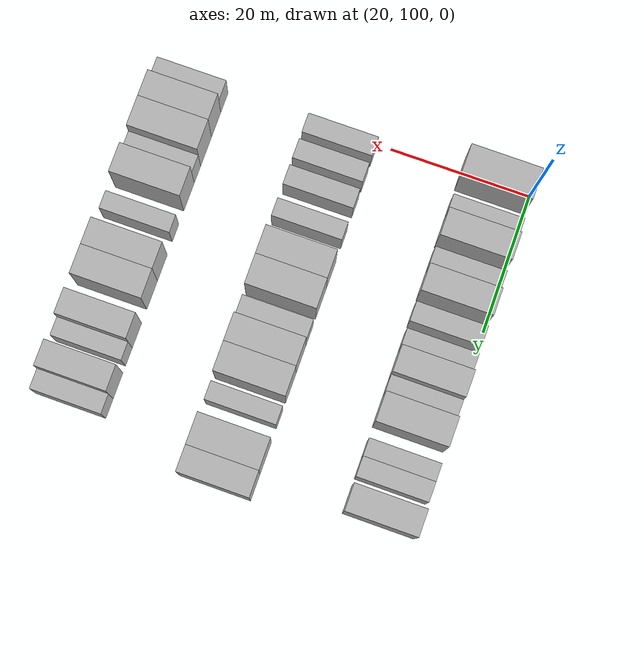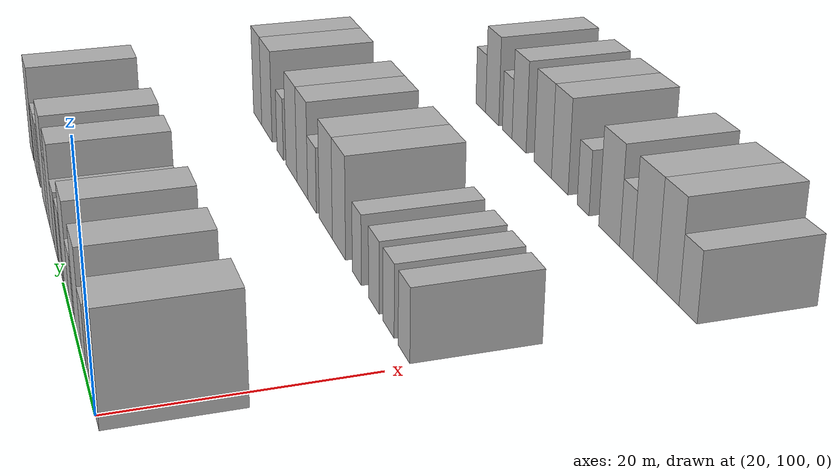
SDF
<sdf version="1.6">
 <world name="default">
  <model name="building_93">
   <static>1</static>
   <pose>25.0000 100.3363 0 0.000000 0.000000 0.000000</pose>
   <link name="link">
    <pose>0 0 4.50 0 0 0</pose>
    <collision name="collision"><geometry><box><size>10.0000 4.4751 9.0000</size></box></geometry></collision>
    <visual name="visual">
     <cast_shadows>0</cast_shadows>
     <geometry><box><size>10.0000 4.4751 9.0000</size></box></geometry>
     <material>
      <script>
       <uri>model://HANNAS_wall/materials/scripts</uri>
       <uri>model://HANNAS_wall/materials/textures</uri>
       <name>vrc/HANNAS_wall</name>
      </script>
     </material>
    </visual>
   </link>
  </model>
  <model name="building_94">
   <static>1</static>
   <pose>25.0000 105.9063 0 0.000000 0.000000 0.000000</pose>
   <link name="link">
    <pose>0 0 3.00 0 0 0</pose>
    <collision name="collision"><geometry><box><size>10.0000 2.6651 6.0000</size></box></geometry></collision>
    <visual name="visual">
     <cast_shadows>0</cast_shadows>
     <geometry><box><size>10.0000 2.6651 6.0000</size></box></geometry>
     <material>
      <script>
       <uri>model://HANNAS_wall/materials/scripts</uri>
       <uri>model://HANNAS_wall/materials/textures</uri>
       <name>vrc/HANNAS_wall</name>
      </script>
     </material>
    </visual>
   </link>
  </model>
  <model name="building_95">
   <static>1</static>
   <pose>25.0000 109.1983 0 0.000000 0.000000 0.000000</pose>
   <link name="link">
    <pose>0 0 4.50 0 0 0</pose>
    <collision name="collision"><geometry><box><size>10.0000 3.9188 9.0000</size></box></geometry></collision>
    <visual name="visual">
     <cast_shadows>0</cast_shadows>
     <geometry><box><size>10.0000 3.9188 9.0000</size></box></geometry>
     <material>
      <script>
       <uri>model://HANNAS_wall/materials/scripts</uri>
       <uri>model://HANNAS_wall/materials/textures</uri>
       <name>vrc/HANNAS_wall</name>
      </script>
     </material>
    </visual>
   </link>
  </model>
  <model name="building_96">
   <static>1</static>
   <pose>25.0000 113.6531 0 0.000000 0.000000 0.000000</pose>
   <link name="link">
    <pose>0 0 3.00 0 0 0</pose>
    <collision name="collision"><geometry><box><size>10.0000 2.9909 6.0000</size></box></geometry></collision>
    <visual name="visual">
     <cast_shadows>0</cast_shadows>
     <geometry><box><size>10.0000 2.9909 6.0000</size></box></geometry>
     <material>
      <script>
       <uri>model://HANNAS_wall/materials/scripts</uri>
       <uri>model://HANNAS_wall/materials/textures</uri>
       <name>vrc/HANNAS_wall</name>
      </script>
     </material>
    </visual>
   </link>
  </model>
  <model name="building_97">
   <static>1</static>
   <pose>25.0000 117.0629 0 0.000000 0.000000 0.000000</pose>
   <link name="link">
    <pose>0 0 4.50 0 0 0</pose>
    <collision name="collision"><geometry><box><size>10.0000 3.8287 9.0000</size></box></geometry></collision>
    <visual name="visual">
     <cast_shadows>0</cast_shadows>
     <geometry><box><size>10.0000 3.8287 9.0000</size></box></geometry>
     <material>
      <script>
       <uri>model://HANNAS_wall/materials/scripts</uri>
       <uri>model://HANNAS_wall/materials/textures</uri>
       <name>vrc/HANNAS_wall</name>
      </script>
     </material>
    </visual>
   </link>
  </model>
  <model name="building_98">
   <static>1</static>
   <pose>25.0000 121.3862 0 0.000000 0.000000 0.000000</pose>
   <link name="link">
    <pose>0 0 3.00 0 0 0</pose>
    <collision name="collision"><geometry><box><size>10.0000 2.8179 6.0000</size></box></geometry></collision>
    <visual name="visual">
     <cast_shadows>0</cast_shadows>
     <geometry><box><size>10.0000 2.8179 6.0000</size></box></geometry>
     <material>
      <script>
       <uri>model://HANNAS_wall/materials/scripts</uri>
       <uri>model://HANNAS_wall/materials/textures</uri>
       <name>vrc/HANNAS_wall</name>
      </script>
     </material>
    </visual>
   </link>
  </model>
  <model name="building_99">
   <static>1</static>
   <pose>25.0000 125.1654 0 0.000000 0.000000 0.000000</pose>
   <link name="link">
    <pose>0 0 3.00 0 0 0</pose>
    <collision name="collision"><geometry><box><size>10.0000 2.7405 6.0000</size></box></geometry></collision>
    <visual name="visual">
     <cast_shadows>0</cast_shadows>
     <geometry><box><size>10.0000 2.7405 6.0000</size></box></geometry>
     <material>
      <script>
       <uri>model://HANNAS_wall/materials/scripts</uri>
       <uri>model://HANNAS_wall/materials/textures</uri>
       <name>vrc/HANNAS_wall</name>
      </script>
     </material>
    </visual>
   </link>
  </model>
  <model name="building_100">
   <static>1</static>
   <pose>25.0000 128.4216 0 0.000000 0.000000 0.000000</pose>
   <link name="link">
    <pose>0 0 4.50 0 0 0</pose>
    <collision name="collision"><geometry><box><size>10.0000 3.7720 9.0000</size></box></geometry></collision>
    <visual name="visual">
     <cast_shadows>0</cast_shadows>
     <geometry><box><size>10.0000 3.7720 9.0000</size></box></geometry>
     <material>
      <script>
       <uri>model://HANNAS_wall/materials/scripts</uri>
       <uri>model://HANNAS_wall/materials/textures</uri>
       <name>vrc/HANNAS_wall</name>
      </script>
     </material>
    </visual>
   </link>
  </model>
  <model name="building_101">
   <static>1</static>
   <pose>25.0000 131.6220 0 0.000000 0.000000 0.000000</pose>
   <link name="link">
    <pose>0 0 3.00 0 0 0</pose>
    <collision name="collision"><geometry><box><size>10.0000 2.6289 6.0000</size></box></geometry></collision>
    <visual name="visual">
     <cast_shadows>0</cast_shadows>
     <geometry><box><size>10.0000 2.6289 6.0000</size></box></geometry>
     <material>
      <script>
       <uri>model://HANNAS_wall/materials/scripts</uri>
       <uri>model://HANNAS_wall/materials/textures</uri>
       <name>vrc/HANNAS_wall</name>
      </script>
     </material>
    </visual>
   </link>
  </model>
  <model name="building_102">
   <static>1</static>
   <pose>25.0000 135.0297 0 0.000000 0.000000 0.000000</pose>
   <link name="link">
    <pose>0 0 4.50 0 0 0</pose>
    <collision name="collision"><geometry><box><size>10.0000 4.1864 9.0000</size></box></geometry></collision>
    <visual name="visual">
     <cast_shadows>0</cast_shadows>
     <geometry><box><size>10.0000 4.1864 9.0000</size></box></geometry>
     <material>
      <script>
       <uri>model://HANNAS_wall/materials/scripts</uri>
       <uri>model://HANNAS_wall/materials/textures</uri>
       <name>vrc/HANNAS_wall</name>
      </script>
     </material>
    </visual>
   </link>
  </model>
  <model name="building_103">
   <static>1</static>
   <pose>25.0000 140.3640 0 0.000000 0.000000 0.000000</pose>
   <link name="link">
    <pose>0 0 3.00 0 0 0</pose>
    <collision name="collision"><geometry><box><size>10.0000 2.4822 6.0000</size></box></geometry></collision>
    <visual name="visual">
     <cast_shadows>0</cast_shadows>
     <geometry><box><size>10.0000 2.4822 6.0000</size></box></geometry>
     <material>
      <script>
       <uri>model://HANNAS_wall/materials/scripts</uri>
       <uri>model://HANNAS_wall/materials/textures</uri>
       <name>vrc/HANNAS_wall</name>
      </script>
     </material>
    </visual>
   </link>
  </model>
  <model name="building_104">
   <static>1</static>
   <pose>25.0000 143.0253 0 0.000000 0.000000 0.000000</pose>
   <link name="link">
    <pose>0 0 3.00 0 0 0</pose>
    <collision name="collision"><geometry><box><size>10.0000 2.8404 6.0000</size></box></geometry></collision>
    <visual name="visual">
     <cast_shadows>0</cast_shadows>
     <geometry><box><size>10.0000 2.8404 6.0000</size></box></geometry>
     <material>
      <script>
       <uri>model://HANNAS_wall/materials/scripts</uri>
       <uri>model://HANNAS_wall/materials/textures</uri>
       <name>vrc/HANNAS_wall</name>
      </script>
     </material>
    </visual>
   </link>
  </model>
  <model name="building_105">
   <static>1</static>
   <pose>25.0000 147.3589 0 0.000000 0.000000 0.000000</pose>
   <link name="link">
    <pose>0 0 4.50 0 0 0</pose>
    <collision name="collision"><geometry><box><size>10.0000 3.8269 9.0000</size></box></geometry></collision>
    <visual name="visual">
     <cast_shadows>0</cast_shadows>
     <geometry><box><size>10.0000 3.8269 9.0000</size></box></geometry>
     <material>
      <script>
       <uri>model://HANNAS_wall/materials/scripts</uri>
       <uri>model://HANNAS_wall/materials/textures</uri>
       <name>vrc/HANNAS_wall</name>
      </script>
     </material>
    </visual>
   </link>
  </model>
  <model name="building_214">
   <static>1</static>
   <pose>47.0000 101.9288 0 0.000000 0.000000 0.000000</pose>
   <link name="link">
    <pose>0 0 3.00 0 0 0</pose>
    <collision name="collision"><geometry><box><size>10.0000 2.7709 6.0000</size></box></geometry></collision>
    <visual name="visual">
     <cast_shadows>0</cast_shadows>
     <geometry><box><size>10.0000 2.7709 6.0000</size></box></geometry>
     <material>
      <script>
       <uri>model://HANNAS_wall/materials/scripts</uri>
       <uri>model://HANNAS_wall/materials/textures</uri>
       <name>vrc/HANNAS_wall</name>
      </script>
     </material>
    </visual>
   </link>
  </model>
  <model name="building_215">
   <static>1</static>
   <pose>47.0000 105.7175 0 0.000000 0.000000 0.000000</pose>
   <link name="link">
    <pose>0 0 3.00 0 0 0</pose>
    <collision name="collision"><geometry><box><size>10.0000 2.8064 6.0000</size></box></geometry></collision>
    <visual name="visual">
     <cast_shadows>0</cast_shadows>
     <geometry><box><size>10.0000 2.8064 6.0000</size></box></geometry>
     <material>
      <script>
       <uri>model://HANNAS_wall/materials/scripts</uri>
       <uri>model://HANNAS_wall/materials/textures</uri>
       <name>vrc/HANNAS_wall</name>
      </script>
     </material>
    </visual>
   </link>
  </model>
  <model name="building_216">
   <static>1</static>
   <pose>47.0000 109.5364 0 0.000000 0.000000 0.000000</pose>
   <link name="link">
    <pose>0 0 3.00 0 0 0</pose>
    <collision name="collision"><geometry><box><size>10.0000 2.8315 6.0000</size></box></geometry></collision>
    <visual name="visual">
     <cast_shadows>0</cast_shadows>
     <geometry><box><size>10.0000 2.8315 6.0000</size></box></geometry>
     <material>
      <script>
       <uri>model://HANNAS_wall/materials/scripts</uri>
       <uri>model://HANNAS_wall/materials/textures</uri>
       <name>vrc/HANNAS_wall</name>
      </script>
     </material>
    </visual>
   </link>
  </model>
  <model name="building_217">
   <static>1</static>
   <pose>47.0000 114.2414 0 0.000000 0.000000 0.000000</pose>
   <link name="link">
    <pose>0 0 3.00 0 0 0</pose>
    <collision name="collision"><geometry><box><size>10.0000 2.5785 6.0000</size></box></geometry></collision>
    <visual name="visual">
     <cast_shadows>0</cast_shadows>
     <geometry><box><size>10.0000 2.5785 6.0000</size></box></geometry>
     <material>
      <script>
       <uri>model://HANNAS_wall/materials/scripts</uri>
       <uri>model://HANNAS_wall/materials/textures</uri>
       <name>vrc/HANNAS_wall</name>
      </script>
     </material>
    </visual>
   </link>
  </model>
  <model name="building_218">
   <static>1</static>
   <pose>47.0000 119.5568 0 0.000000 0.000000 0.000000</pose>
   <link name="link">
    <pose>0 0 4.50 0 0 0</pose>
    <collision name="collision"><geometry><box><size>10.0000 4.0523 9.0000</size></box></geometry></collision>
    <visual name="visual">
     <cast_shadows>0</cast_shadows>
     <geometry><box><size>10.0000 4.0523 9.0000</size></box></geometry>
     <material>
      <script>
       <uri>model://HANNAS_wall/materials/scripts</uri>
       <uri>model://HANNAS_wall/materials/textures</uri>
       <name>vrc/HANNAS_wall</name>
      </script>
     </material>
    </visual>
   </link>
  </model>
  <model name="building_219">
   <static>1</static>
   <pose>47.0000 123.7242 0 0.000000 0.000000 0.000000</pose>
   <link name="link">
    <pose>0 0 4.50 0 0 0</pose>
    <collision name="collision"><geometry><box><size>10.0000 4.2825 9.0000</size></box></geometry></collision>
    <visual name="visual">
     <cast_shadows>0</cast_shadows>
     <geometry><box><size>10.0000 4.2825 9.0000</size></box></geometry>
     <material>
      <script>
       <uri>model://HANNAS_wall/materials/scripts</uri>
       <uri>model://HANNAS_wall/materials/textures</uri>
       <name>vrc/HANNAS_wall</name>
      </script>
     </material>
    </visual>
   </link>
  </model>
  <model name="building_220">
   <static>1</static>
   <pose>47.0000 128.3544 0 0.000000 0.000000 0.000000</pose>
   <link name="link">
    <pose>0 0 3.00 0 0 0</pose>
    <collision name="collision"><geometry><box><size>10.0000 2.9779 6.0000</size></box></geometry></collision>
    <visual name="visual">
     <cast_shadows>0</cast_shadows>
     <geometry><box><size>10.0000 2.9779 6.0000</size></box></geometry>
     <material>
      <script>
       <uri>model://HANNAS_wall/materials/scripts</uri>
       <uri>model://HANNAS_wall/materials/textures</uri>
       <name>vrc/HANNAS_wall</name>
      </script>
     </material>
    </visual>
   </link>
  </model>
  <model name="building_221">
   <static>1</static>
   <pose>47.0000 131.8289 0 0.000000 0.000000 0.000000</pose>
   <link name="link">
    <pose>0 0 4.50 0 0 0</pose>
    <collision name="collision"><geometry><box><size>10.0000 3.9711 9.0000</size></box></geometry></collision>
    <visual name="visual">
     <cast_shadows>0</cast_shadows>
     <geometry><box><size>10.0000 3.9711 9.0000</size></box></geometry>
     <material>
      <script>
       <uri>model://HANNAS_wall/materials/scripts</uri>
       <uri>model://HANNAS_wall/materials/textures</uri>
       <name>vrc/HANNAS_wall</name>
      </script>
     </material>
    </visual>
   </link>
  </model>
  <model name="building_222">
   <static>1</static>
   <pose>47.0000 135.9075 0 0.000000 0.000000 0.000000</pose>
   <link name="link">
    <pose>0 0 4.50 0 0 0</pose>
    <collision name="collision"><geometry><box><size>10.0000 4.1862 9.0000</size></box></geometry></collision>
    <visual name="visual">
     <cast_shadows>0</cast_shadows>
     <geometry><box><size>10.0000 4.1862 9.0000</size></box></geometry>
     <material>
      <script>
       <uri>model://HANNAS_wall/materials/scripts</uri>
       <uri>model://HANNAS_wall/materials/textures</uri>
       <name>vrc/HANNAS_wall</name>
      </script>
     </material>
    </visual>
   </link>
  </model>
  <model name="building_223">
   <static>1</static>
   <pose>47.0000 140.3104 0 0.000000 0.000000 0.000000</pose>
   <link name="link">
    <pose>0 0 3.00 0 0 0</pose>
    <collision name="collision"><geometry><box><size>10.0000 2.6194 6.0000</size></box></geometry></collision>
    <visual name="visual">
     <cast_shadows>0</cast_shadows>
     <geometry><box><size>10.0000 2.6194 6.0000</size></box></geometry>
     <material>
      <script>
       <uri>model://HANNAS_wall/materials/scripts</uri>
       <uri>model://HANNAS_wall/materials/textures</uri>
       <name>vrc/HANNAS_wall</name>
      </script>
     </material>
    </visual>
   </link>
  </model>
  <model name="building_224">
   <static>1</static>
   <pose>47.0000 145.8509 0 0.000000 0.000000 0.000000</pose>
   <link name="link">
    <pose>0 0 4.50 0 0 0</pose>
    <collision name="collision"><geometry><box><size>10.0000 4.4617 9.0000</size></box></geometry></collision>
    <visual name="visual">
     <cast_shadows>0</cast_shadows>
     <geometry><box><size>10.0000 4.4617 9.0000</size></box></geometry>
     <material>
      <script>
       <uri>model://HANNAS_wall/materials/scripts</uri>
       <uri>model://HANNAS_wall/materials/textures</uri>
       <name>vrc/HANNAS_wall</name>
      </script>
     </material>
    </visual>
   </link>
  </model>
  <model name="building_225">
   <static>1</static>
   <pose>47.0000 149.9352 0 0.000000 0.000000 0.000000</pose>
   <link name="link">
    <pose>0 0 4.50 0 0 0</pose>
    <collision name="collision"><geometry><box><size>10.0000 3.7069 9.0000</size></box></geometry></collision>
    <visual name="visual">
     <cast_shadows>0</cast_shadows>
     <geometry><box><size>10.0000 3.7069 9.0000</size></box></geometry>
     <material>
      <script>
       <uri>model://HANNAS_wall/materials/scripts</uri>
       <uri>model://HANNAS_wall/materials/textures</uri>
       <name>vrc/HANNAS_wall</name>
      </script>
     </material>
    </visual>
   </link>
  </model>
  <model name="building_336">
   <static>1</static>
   <pose>69.0000 101.4647 0 0.000000 0.000000 0.000000</pose>
   <link name="link">
    <pose>0 0 3.00 0 0 0</pose>
    <collision name="collision"><geometry><box><size>10.0000 2.9480 6.0000</size></box></geometry></collision>
    <visual name="visual">
     <cast_shadows>0</cast_shadows>
     <geometry><box><size>10.0000 2.9480 6.0000</size></box></geometry>
     <material>
      <script>
       <uri>model://HANNAS_wall/materials/scripts</uri>
       <uri>model://HANNAS_wall/materials/textures</uri>
       <name>vrc/HANNAS_wall</name>
      </script>
     </material>
    </visual>
   </link>
  </model>
  <model name="building_337">
   <static>1</static>
   <pose>69.0000 104.8193 0 0.000000 0.000000 0.000000</pose>
   <link name="link">
    <pose>0 0 4.50 0 0 0</pose>
    <collision name="collision"><geometry><box><size>10.0000 3.7614 9.0000</size></box></geometry></collision>
    <visual name="visual">
     <cast_shadows>0</cast_shadows>
     <geometry><box><size>10.0000 3.7614 9.0000</size></box></geometry>
     <material>
      <script>
       <uri>model://HANNAS_wall/materials/scripts</uri>
       <uri>model://HANNAS_wall/materials/textures</uri>
       <name>vrc/HANNAS_wall</name>
      </script>
     </material>
    </visual>
   </link>
  </model>
  <model name="building_338">
   <static>1</static>
   <pose>69.0000 108.8657 0 0.000000 0.000000 0.000000</pose>
   <link name="link">
    <pose>0 0 4.50 0 0 0</pose>
    <collision name="collision"><geometry><box><size>10.0000 4.3313 9.0000</size></box></geometry></collision>
    <visual name="visual">
     <cast_shadows>0</cast_shadows>
     <geometry><box><size>10.0000 4.3313 9.0000</size></box></geometry>
     <material>
      <script>
       <uri>model://HANNAS_wall/materials/scripts</uri>
       <uri>model://HANNAS_wall/materials/textures</uri>
       <name>vrc/HANNAS_wall</name>
      </script>
     </material>
    </visual>
   </link>
  </model>
  <model name="building_339">
   <static>1</static>
   <pose>69.0000 112.3008 0 0.000000 0.000000 0.000000</pose>
   <link name="link">
    <pose>0 0 3.00 0 0 0</pose>
    <collision name="collision"><geometry><box><size>10.0000 2.5389 6.0000</size></box></geometry></collision>
    <visual name="visual">
     <cast_shadows>0</cast_shadows>
     <geometry><box><size>10.0000 2.5389 6.0000</size></box></geometry>
     <material>
      <script>
       <uri>model://HANNAS_wall/materials/scripts</uri>
       <uri>model://HANNAS_wall/materials/textures</uri>
       <name>vrc/HANNAS_wall</name>
      </script>
     </material>
    </visual>
   </link>
  </model>
  <model name="building_340">
   <static>1</static>
   <pose>69.0000 115.6500 0 0.000000 0.000000 0.000000</pose>
   <link name="link">
    <pose>0 0 4.50 0 0 0</pose>
    <collision name="collision"><geometry><box><size>10.0000 4.1595 9.0000</size></box></geometry></collision>
    <visual name="visual">
     <cast_shadows>0</cast_shadows>
     <geometry><box><size>10.0000 4.1595 9.0000</size></box></geometry>
     <material>
      <script>
       <uri>model://HANNAS_wall/materials/scripts</uri>
       <uri>model://HANNAS_wall/materials/textures</uri>
       <name>vrc/HANNAS_wall</name>
      </script>
     </material>
    </visual>
   </link>
  </model>
  <model name="building_341">
   <static>1</static>
   <pose>69.0000 121.0007 0 0.000000 0.000000 0.000000</pose>
   <link name="link">
    <pose>0 0 3.00 0 0 0</pose>
    <collision name="collision"><geometry><box><size>10.0000 2.5419 6.0000</size></box></geometry></collision>
    <visual name="visual">
     <cast_shadows>0</cast_shadows>
     <geometry><box><size>10.0000 2.5419 6.0000</size></box></geometry>
     <material>
      <script>
       <uri>model://HANNAS_wall/materials/scripts</uri>
       <uri>model://HANNAS_wall/materials/textures</uri>
       <name>vrc/HANNAS_wall</name>
      </script>
     </material>
    </visual>
   </link>
  </model>
  <model name="building_342">
   <static>1</static>
   <pose>69.0000 126.1734 0 0.000000 0.000000 0.000000</pose>
   <link name="link">
    <pose>0 0 4.50 0 0 0</pose>
    <collision name="collision"><geometry><box><size>10.0000 3.8036 9.0000</size></box></geometry></collision>
    <visual name="visual">
     <cast_shadows>0</cast_shadows>
     <geometry><box><size>10.0000 3.8036 9.0000</size></box></geometry>
     <material>
      <script>
       <uri>model://HANNAS_wall/materials/scripts</uri>
       <uri>model://HANNAS_wall/materials/textures</uri>
       <name>vrc/HANNAS_wall</name>
      </script>
     </material>
    </visual>
   </link>
  </model>
  <model name="building_343">
   <static>1</static>
   <pose>69.0000 130.1563 0 0.000000 0.000000 0.000000</pose>
   <link name="link">
    <pose>0 0 4.50 0 0 0</pose>
    <collision name="collision"><geometry><box><size>10.0000 4.1621 9.0000</size></box></geometry></collision>
    <visual name="visual">
     <cast_shadows>0</cast_shadows>
     <geometry><box><size>10.0000 4.1621 9.0000</size></box></geometry>
     <material>
      <script>
       <uri>model://HANNAS_wall/materials/scripts</uri>
       <uri>model://HANNAS_wall/materials/textures</uri>
       <name>vrc/HANNAS_wall</name>
      </script>
     </material>
    </visual>
   </link>
  </model>
  <model name="building_344">
   <static>1</static>
   <pose>69.0000 136.0463 0 0.000000 0.000000 0.000000</pose>
   <link name="link">
    <pose>0 0 4.50 0 0 0</pose>
    <collision name="collision"><geometry><box><size>10.0000 3.6181 9.0000</size></box></geometry></collision>
    <visual name="visual">
     <cast_shadows>0</cast_shadows>
     <geometry><box><size>10.0000 3.6181 9.0000</size></box></geometry>
     <material>
      <script>
       <uri>model://HANNAS_wall/materials/scripts</uri>
       <uri>model://HANNAS_wall/materials/textures</uri>
       <name>vrc/HANNAS_wall</name>
      </script>
     </material>
    </visual>
   </link>
  </model>
  <model name="building_345">
   <static>1</static>
   <pose>69.0000 139.1522 0 0.000000 0.000000 0.000000</pose>
   <link name="link">
    <pose>0 0 3.00 0 0 0</pose>
    <collision name="collision"><geometry><box><size>10.0000 2.5936 6.0000</size></box></geometry></collision>
    <visual name="visual">
     <cast_shadows>0</cast_shadows>
     <geometry><box><size>10.0000 2.5936 6.0000</size></box></geometry>
     <material>
      <script>
       <uri>model://HANNAS_wall/materials/scripts</uri>
       <uri>model://HANNAS_wall/materials/textures</uri>
       <name>vrc/HANNAS_wall</name>
      </script>
     </material>
    </visual>
   </link>
  </model>
  <model name="building_346">
   <static>1</static>
   <pose>69.0000 143.2878 0 0.000000 0.000000 0.000000</pose>
   <link name="link">
    <pose>0 0 4.50 0 0 0</pose>
    <collision name="collision"><geometry><box><size>10.0000 3.6777 9.0000</size></box></geometry></collision>
    <visual name="visual">
     <cast_shadows>0</cast_shadows>
     <geometry><box><size>10.0000 3.6777 9.0000</size></box></geometry>
     <material>
      <script>
       <uri>model://HANNAS_wall/materials/scripts</uri>
       <uri>model://HANNAS_wall/materials/textures</uri>
       <name>vrc/HANNAS_wall</name>
      </script>
     </material>
    </visual>
   </link>
  </model>
  <model name="building_347">
   <static>1</static>
   <pose>69.0000 146.5415 0 0.000000 0.000000 0.000000</pose>
   <link name="link">
    <pose>0 0 3.00 0 0 0</pose>
    <collision name="collision"><geometry><box><size>10.0000 2.8297 6.0000</size></box></geometry></collision>
    <visual name="visual">
     <cast_shadows>0</cast_shadows>
     <geometry><box><size>10.0000 2.8297 6.0000</size></box></geometry>
     <material>
      <script>
       <uri>model://HANNAS_wall/materials/scripts</uri>
       <uri>model://HANNAS_wall/materials/textures</uri>
       <name>vrc/HANNAS_wall</name>
      </script>
     </material>
    </visual>
   </link>
  </model>
 </world>
</sdf>
